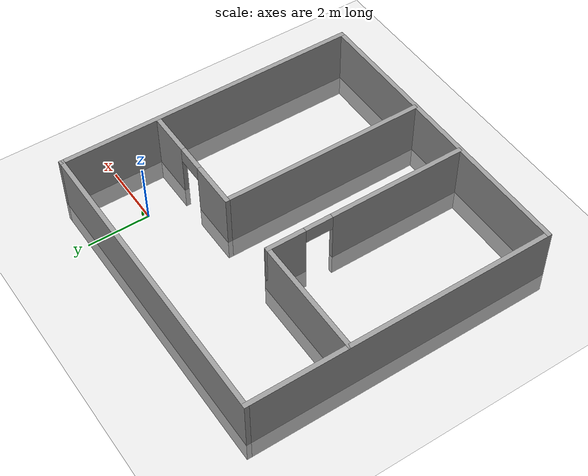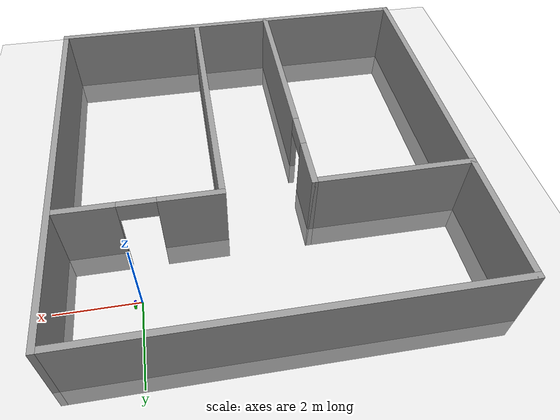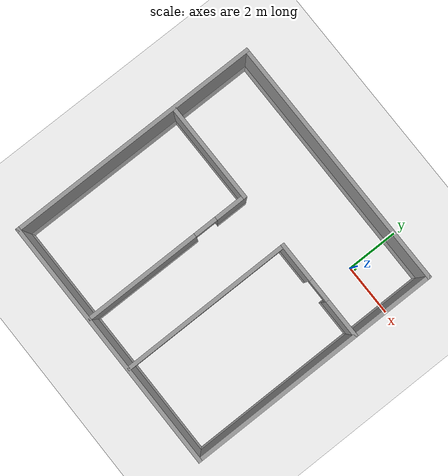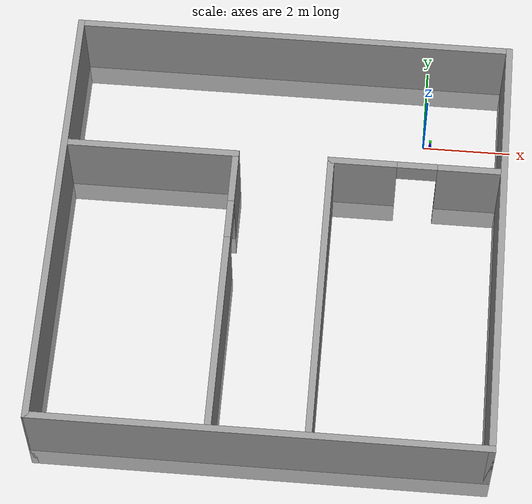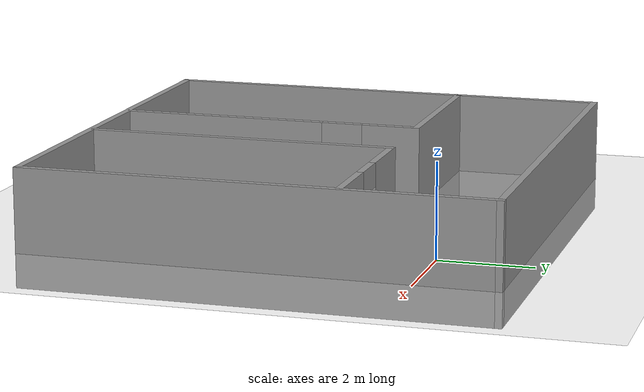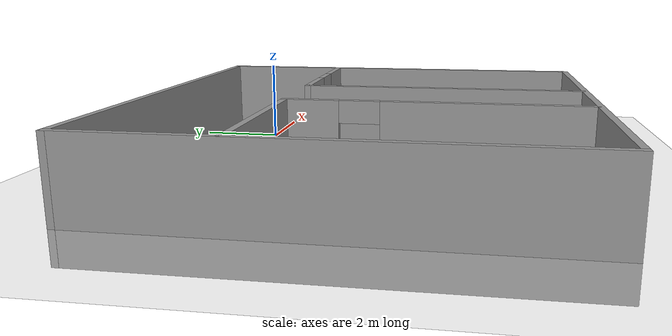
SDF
<sdf version="1.6">
 <world name="default">
  <model name="ground_plane">
   <static>1</static>
   <link name="link">
    <collision name="collision">
     <geometry><plane><normal>0 0 1</normal><size>100 100</size></plane></geometry>
     <surface><friction><ode><mu>100</mu><mu2>50</mu2></ode></friction></surface>
    </collision>
    <visual name="visual">
     <cast_shadows>0</cast_shadows>
     <geometry><plane><normal>0 0 1</normal><size>100 100</size></plane></geometry>
     <material>
      <script><uri>file://media/materials/scripts/gazebo.material</uri><name>Gazebo/Grey</name></script>
     </material>
    </visual>
   </link>
  </model>
  <model name="lego_room">
   <pose>-3.13326 -3.25 -0.733357 -0 -4e-06 -4.2e-05</pose>
   <link name="Wall_11">
    <collision name="Wall_11_Collision">
     <geometry><box><size>10 0.15 2.5</size></box></geometry>
     <pose>0 0 1.25 0 -0 0</pose>
    </collision>
    <visual name="Wall_11_Visual">
     <pose>0 0 1.25 0 -0 0</pose>
     <geometry><box><size>10 0.15 2.5</size></box></geometry>
     <material>
      <script><uri>file://media/materials/scripts/gazebo.material</uri><name>Gazebo/Grey</name></script>
      <ambient>1 1 1 1</ambient>
     </material>
    </visual>
    <pose>0 -4.925 0 0 -0 0</pose>
   </link>
   <link name="Wall_12">
    <collision name="Wall_12_Collision">
     <geometry><box><size>10 0.15 2.5</size></box></geometry>
     <pose>0 0 1.25 0 -0 0</pose>
    </collision>
    <visual name="Wall_12_Visual">
     <pose>0 0 1.25 0 -0 0</pose>
     <geometry><box><size>10 0.15 2.5</size></box></geometry>
     <material>
      <script><uri>file://media/materials/scripts/gazebo.material</uri><name>Gazebo/Grey</name></script>
      <ambient>1 1 1 1</ambient>
     </material>
    </visual>
    <pose>4.925 0 0 0 -0 1.5708</pose>
   </link>
   <link name="Wall_13">
    <collision name="Wall_13_Collision">
     <geometry><box><size>10 0.15 2.5</size></box></geometry>
     <pose>0 0 1.25 0 -0 0</pose>
    </collision>
    <visual name="Wall_13_Visual">
     <pose>0 0 1.25 0 -0 0</pose>
     <geometry><box><size>10 0.15 2.5</size></box></geometry>
     <material>
      <script><uri>file://media/materials/scripts/gazebo.material</uri><name>Gazebo/Grey</name></script>
      <ambient>1 1 1 1</ambient>
     </material>
    </visual>
    <pose>0 4.925 0 0 -0 3.14159</pose>
   </link>
   <link name="Wall_14">
    <collision name="Wall_14_Collision">
     <geometry><box><size>10 0.15 2.5</size></box></geometry>
     <pose>0 0 1.25 0 -0 0</pose>
    </collision>
    <visual name="Wall_14_Visual">
     <pose>0 0 1.25 0 -0 0</pose>
     <geometry><box><size>10 0.15 2.5</size></box></geometry>
     <material>
      <script><uri>file://media/materials/scripts/gazebo.material</uri><name>Gazebo/Grey</name></script>
      <ambient>1 1 1 1</ambient>
     </material>
    </visual>
    <pose>-4.925 0 0 0 0 -1.5708</pose>
   </link>
   <link name="Wall_16">
    <collision name="Wall_16_Collision">
     <geometry><box><size>4 0.15 2.5</size></box></geometry>
     <pose>0 0 1.25 0 -0 0</pose>
    </collision>
    <visual name="Wall_16_Visual">
     <pose>0 0 1.25 0 -0 0</pose>
     <geometry><box><size>4 0.15 2.5</size></box></geometry>
     <material>
      <script><uri>file://media/materials/scripts/gazebo.material</uri><name>Gazebo/Grey</name></script>
      <ambient>1 1 1 1</ambient>
     </material>
    </visual>
    <pose>-2.99422 1.74965 0 0 -0 0</pose>
   </link>
   <link name="Wall_17">
    <pose>-1.06922 -1.55035 0 0 0 -1.5708</pose>
    <visual name="Wall_17_Visual_0">
     <pose>-2.72991 0 1.25 0 -0 0</pose>
     <geometry><box><size>1.29018 0.15 2.5</size></box></geometry>
     <material>
      <script><uri>file://media/materials/scripts/gazebo.material</uri><name>Gazebo/Grey</name></script>
      <ambient>1 1 1 1</ambient>
     </material>
    </visual>
    <collision name="Wall_17_Collision_0">
     <geometry><box><size>1.29018 0.15 2.5</size></box></geometry>
     <pose>-2.72991 0 1.25 0 -0 0</pose>
    </collision>
    <visual name="Wall_17_Visual_1">
     <pose>1.09509 0 1.25 0 -0 0</pose>
     <geometry><box><size>4.55982 0.15 2.5</size></box></geometry>
     <material>
      <script><uri>file://media/materials/scripts/gazebo.material</uri><name>Gazebo/Grey</name></script>
      <ambient>1 1 1 1</ambient>
     </material>
    </visual>
    <collision name="Wall_17_Collision_1">
     <geometry><box><size>4.55982 0.15 2.5</size></box></geometry>
     <pose>1.09509 0 1.25 0 -0 0</pose>
    </collision>
    <visual name="Wall_17_Visual_2">
     <pose>-1.63482 0 2.25 0 -0 0</pose>
     <geometry><box><size>0.9 0.15 0.5</size></box></geometry>
     <material>
      <script><uri>file://media/materials/scripts/gazebo.material</uri><name>Gazebo/Grey</name></script>
      <ambient>1 1 1 1</ambient>
     </material>
    </visual>
    <collision name="Wall_17_Collision_2">
     <geometry><box><size>0.9 0.15 0.5</size></box></geometry>
     <pose>-1.63482 0 2.25 0 -0 0</pose>
    </collision>
   </link>
   <link name="Wall_19">
    <pose>2.98629 1.74965 0 0 -0 3.14159</pose>
    <visual name="Wall_19_Visual_0">
     <pose>-1.22624 0 1.25 0 -0 0</pose>
     <geometry><box><size>1.54752 0.15 2.5</size></box></geometry>
     <material>
      <script><uri>file://media/materials/scripts/gazebo.material</uri><name>Gazebo/Grey</name></script>
      <ambient>1 1 1 1</ambient>
     </material>
    </visual>
    <collision name="Wall_19_Collision_0">
     <geometry><box><size>1.54752 0.15 2.5</size></box></geometry>
     <pose>-1.22624 0 1.25 0 -0 0</pose>
    </collision>
    <visual name="Wall_19_Visual_1">
     <pose>1.22376 0 1.25 0 -0 0</pose>
     <geometry><box><size>1.55248 0.15 2.5</size></box></geometry>
     <material>
      <script><uri>file://media/materials/scripts/gazebo.material</uri><name>Gazebo/Grey</name></script>
      <ambient>1 1 1 1</ambient>
     </material>
    </visual>
    <collision name="Wall_19_Collision_1">
     <geometry><box><size>1.55248 0.15 2.5</size></box></geometry>
     <pose>1.22376 0 1.25 0 -0 0</pose>
    </collision>
    <visual name="Wall_19_Visual_2">
     <pose>-0.002482 0 2.25 0 -0 0</pose>
     <geometry><box><size>0.9 0.15 0.5</size></box></geometry>
     <material>
      <script><uri>file://media/materials/scripts/gazebo.material</uri><name>Gazebo/Grey</name></script>
      <ambient>1 1 1 1</ambient>
     </material>
    </visual>
    <collision name="Wall_19_Collision_2">
     <geometry><box><size>0.9 0.15 0.5</size></box></geometry>
     <pose>-0.002482 0 2.25 0 -0 0</pose>
    </collision>
   </link>
   <link name="Wall_20">
    <collision name="Wall_20_Collision">
     <geometry><box><size>6.75 0.15 2.5</size></box></geometry>
     <pose>0 0 1.25 0 -0 0</pose>
    </collision>
    <visual name="Wall_20_Visual">
     <pose>0 0 1.25 0 -0 0</pose>
     <geometry><box><size>6.75 0.15 2.5</size></box></geometry>
     <material>
      <script><uri>file://media/materials/scripts/gazebo.material</uri><name>Gazebo/Grey</name></script>
      <ambient>1 1 1 1</ambient>
     </material>
    </visual>
    <pose>1.06129 -1.55035 0 0 0 -1.5708</pose>
   </link>
   <static>1</static>
  </model>
  <model name="blue_block_0">
   <link name="link">
    <inertial>
     <mass>1</mass>
     <inertia>
      <ixx>0.166667</ixx>
      <ixy>0</ixy>
      <ixz>0</ixz>
      <iyy>0.166667</iyy>
      <iyz>0</iyz>
      <izz>0.166667</izz>
     </inertia>
    </inertial>
    <visual name="visual">
     <geometry><box><size>0.05 0.05 0.15</size></box></geometry>
     <material>
      <script><name>Gazebo/Grey</name><uri>file://media/materials/scripts/gazebo.material</uri></script>
      <ambient>0 0 1 1</ambient>
      <diffuse>0 0 1 1</diffuse>
      <specular>0.01 0.01 0.01 1</specular>
      <emissive>0 0 0 1</emissive>
      <shader type="vertex"><normal_map>__default__</normal_map></shader>
     </material>
    </visual>
    <collision name="collision">
     <geometry><box><size>0.05 0.05 0.15</size></box></geometry>
     <surface>
      <friction>
       <ode><mu>1</mu><mu2>1</mu2><fdir1>0 0 0</fdir1><slip1>0</slip1><slip2>0</slip2></ode>
       <torsional>
        <coefficient>1</coefficient>
        <patch_radius>0</patch_radius>
        <surface_radius>0</surface_radius>
        <use_patch_radius>1</use_patch_radius>
        <ode><slip>0</slip></ode>
       </torsional>
      </friction>
      <bounce><restitution_coefficient>0</restitution_coefficient><threshold>1e+06</threshold></bounce>
      <contact>
       <collide_without_contact>0</collide_without_contact>
       <collide_without_contact_bitmask>1</collide_without_contact_bitmask>
       <collide_bitmask>1</collide_bitmask>
       <ode>
        <soft_cfm>0</soft_cfm>
        <soft_erp>0.2</soft_erp>
        <kp>1e+13</kp>
        <kd>1</kd>
        <max_vel>0.01</max_vel>
        <min_depth>0</min_depth>
       </ode>
       <bullet>
        <split_impulse>1</split_impulse>
        <split_impulse_penetration_threshold>-0.01</split_impulse_penetration_threshold>
        <soft_cfm>0</soft_cfm>
        <soft_erp>0.2</soft_erp>
        <kp>1e+13</kp>
        <kd>1</kd>
       </bullet>
      </contact>
     </surface>
    </collision>
   </link>
   <static>0</static>
   <pose>0.150712 0.025141 0.075001 -1e-05 4e-05 -3.5e-05</pose>
  </model>
  <model name="green_block_0">
   <link name="link">
    <inertial>
     <mass>1</mass>
     <inertia>
      <ixx>0.166667</ixx>
      <ixy>0</ixy>
      <ixz>0</ixz>
      <iyy>0.166667</iyy>
      <iyz>0</iyz>
      <izz>0.166667</izz>
     </inertia>
    </inertial>
    <visual name="visual">
     <geometry><box><size>0.05 0.05 0.15</size></box></geometry>
     <material>
      <script><name>Gazebo/Grey</name><uri>file://media/materials/scripts/gazebo.material</uri></script>
      <ambient>0 1 0 1</ambient>
      <diffuse>0 1 0 1</diffuse>
      <specular>0.01 0.01 0.01 1</specular>
      <emissive>0 0 0 1</emissive>
      <shader type="vertex"><normal_map>__default__</normal_map></shader>
     </material>
    </visual>
    <collision name="collision">
     <geometry><box><size>0.05 0.05 0.15</size></box></geometry>
     <surface>
      <friction>
       <ode><mu>1</mu><mu2>1</mu2><fdir1>0 0 0</fdir1><slip1>0</slip1><slip2>0</slip2></ode>
       <torsional>
        <coefficient>1</coefficient>
        <patch_radius>0</patch_radius>
        <surface_radius>0</surface_radius>
        <use_patch_radius>1</use_patch_radius>
        <ode><slip>0</slip></ode>
       </torsional>
      </friction>
      <bounce><restitution_coefficient>0</restitution_coefficient><threshold>1e+06</threshold></bounce>
      <contact>
       <collide_without_contact>0</collide_without_contact>
       <collide_without_contact_bitmask>1</collide_without_contact_bitmask>
       <collide_bitmask>1</collide_bitmask>
       <ode>
        <soft_cfm>0</soft_cfm>
        <soft_erp>0.2</soft_erp>
        <kp>1e+13</kp>
        <kd>1</kd>
        <max_vel>0.01</max_vel>
        <min_depth>0</min_depth>
       </ode>
       <bullet>
        <split_impulse>1</split_impulse>
        <split_impulse_penetration_threshold>-0.01</split_impulse_penetration_threshold>
        <soft_cfm>0</soft_cfm>
        <soft_erp>0.2</soft_erp>
        <kp>1e+13</kp>
        <kd>1</kd>
       </bullet>
      </contact>
     </surface>
    </collision>
   </link>
   <static>0</static>
   <pose>0.153057 0.108343 0.075001 -2e-06 2.5e-05 -5.7e-05</pose>
  </model>
 </world>
</sdf>
